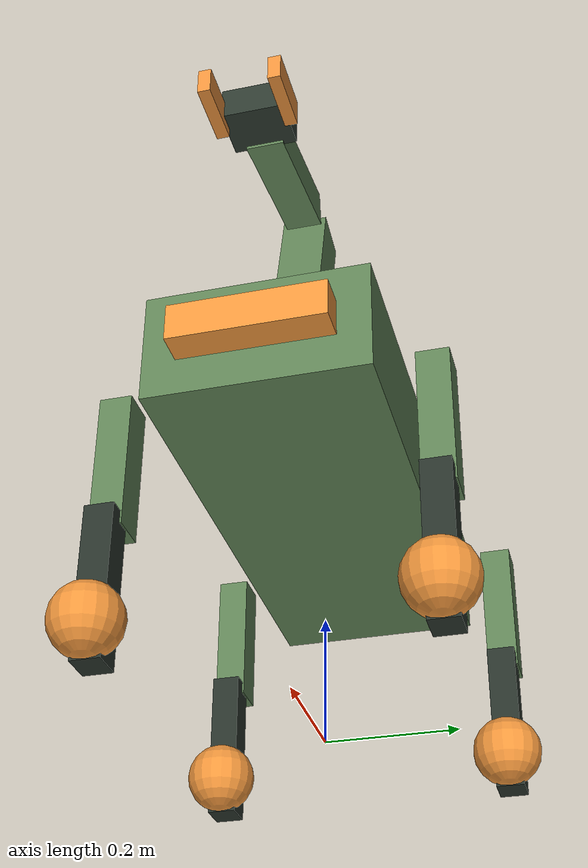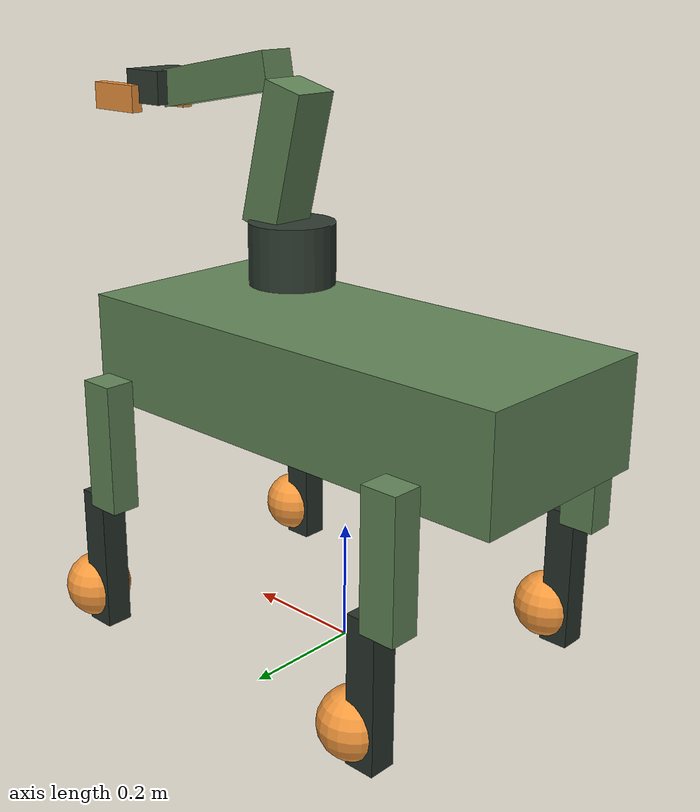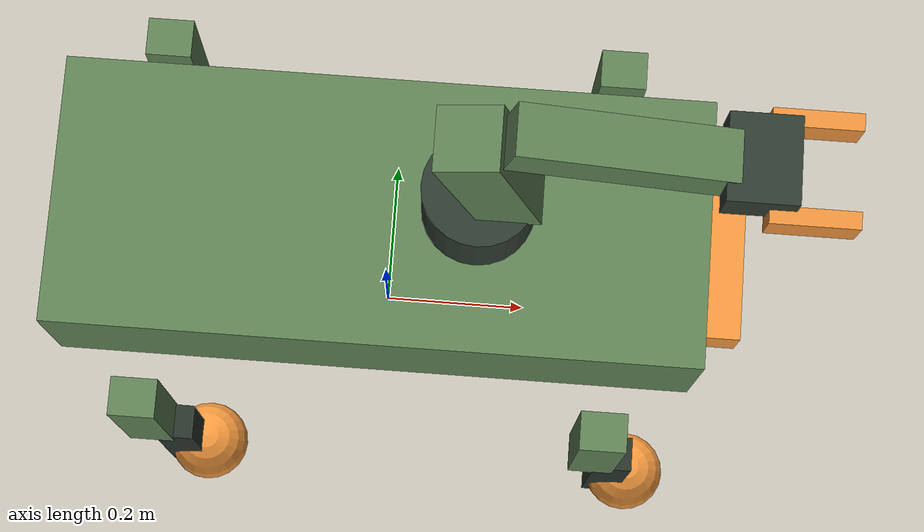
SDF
<?xml version='1.0' encoding='utf-8'?>
<sdf version="1.10">
  <model name="robot">
    <static>false</static>
    <link name="base_link">
      <inertial>
        <mass>45.0</mass>
        <pose>0 0 0.46 0 0 0</pose>
        <inertia>
          <ixx>0.555</ixx>
          <iyy>2.6429999999999993</iyy>
          <izz>2.9549999999999996</izz>
        </inertia>
      </inertial>
      <collision name="body_collision">
        <pose>0 0 0.46 0 0 0</pose>
        <geometry>
          <box>
            <size>0.78 0.3 0.16</size>
          </box>
        </geometry>
        <surface>
          <friction>
            <ode>
              <mu>0.6</mu>
              <mu2>0.6</mu2>
            </ode>
          </friction>
        </surface>
      </collision>
      <visual name="body">
        <pose>0 0 0.46 0 0 0</pose>
        <geometry>
          <box>
            <size>0.82 0.34 0.18</size>
          </box>
        </geometry>
        <material>
          <diffuse>0.38 0.52 0.34 1</diffuse>
        </material>
      </visual>
      <visual name="front_marker">
        <pose>0.43 0 0.46 0 0 0</pose>
        <geometry>
          <box>
            <size>0.06 0.238 0.06</size>
          </box>
        </geometry>
        <material>
          <diffuse>0.96 0.6 0.24 1</diffuse>
        </material>
      </visual>
      <visual name="arm_base_0">
        <pose>0.12 0 0.64 0 0 0</pose>
        <geometry>
          <cylinder>
            <radius>0.07</radius>
            <length>0.1</length>
          </cylinder>
        </geometry>
        <material>
          <diffuse>0.18 0.23 0.19 1</diffuse>
        </material>
      </visual>
      <visual name="upper_arm_0">
        <pose>0.13 0 0.79 0 -0.25 0</pose>
        <geometry>
          <box>
            <size>0.075 0.075 0.23</size>
          </box>
        </geometry>
        <material>
          <diffuse>0.38 0.52 0.34 1</diffuse>
        </material>
      </visual>
      <visual name="forearm_0">
        <pose>0.27 0 0.9 0 0.18 0</pose>
        <geometry>
          <box>
            <size>0.25 0.06 0.06</size>
          </box>
        </geometry>
        <material>
          <diffuse>0.38 0.52 0.34 1</diffuse>
        </material>
      </visual>
      <visual name="wrist_0">
        <pose>0.42 0 0.88 0 0 0</pose>
        <geometry>
          <box>
            <size>0.08 0.1 0.055</size>
          </box>
        </geometry>
        <material>
          <diffuse>0.18 0.23 0.19 1</diffuse>
        </material>
      </visual>
      <visual name="jaw_0_-0.055">
        <pose>0.48 -0.055 0.86 0 0 0</pose>
        <geometry>
          <box>
            <size>0.1 0.02 0.045</size>
          </box>
        </geometry>
        <material>
          <diffuse>0.94 0.58 0.24 1</diffuse>
        </material>
      </visual>
      <visual name="jaw_0_0.055">
        <pose>0.48 0.055 0.86 0 0 0</pose>
        <geometry>
          <box>
            <size>0.1 0.02 0.045</size>
          </box>
        </geometry>
        <material>
          <diffuse>0.94 0.58 0.24 1</diffuse>
        </material>
      </visual>
      <sensor name="imu" type="imu">
        <always_on>true</always_on>
        <update_rate>50</update_rate>
        <topic>/garden/imu</topic>
        <imu />
      </sensor>
    </link>
    <link name="front_left_thigh">
      <pose>0.3 0.24 0.32999999999999996 0 0 0</pose>
      <inertial>
        <mass>1.2</mass>
        <pose>0 0 0 0 0 0</pose>
        <inertia>
          <ixx>0.00509</ixx>
          <iyy>0.0052</iyy>
          <izz>0.00061</izz>
        </inertia>
      </inertial>
      <collision name="thigh_collision">
        <pose>0 0 0 0 0 0</pose>
        <geometry>
          <box>
            <size>0.06 0.05 0.22</size>
          </box>
        </geometry>
        <surface>
          <friction>
            <ode>
              <mu>0.4</mu>
              <mu2>0.4</mu2>
            </ode>
          </friction>
        </surface>
      </collision>
      <visual name="thigh">
        <pose>0 0 0 0 0 0</pose>
        <geometry>
          <box>
            <size>0.06 0.05 0.22</size>
          </box>
        </geometry>
        <material>
          <diffuse>0.38 0.52 0.34 1</diffuse>
        </material>
      </visual>
    </link>
    <link name="front_left_shin">
      <pose>0.32999999999999996 0.24 0.12 0 0 0</pose>
      <inertial>
        <mass>1.1</mass>
        <pose>0 0 0 0 0 0</pose>
        <inertia>
          <ixx>0.005465625000000001</ixx>
          <iyy>0.0055091666666666666</iyy>
          <izz>0.00041479166666666677</izz>
        </inertia>
      </inertial>
      <collision name="shin_collision">
        <pose>0 0 0 0 0 0</pose>
        <geometry>
          <box>
            <size>0.05 0.045 0.24</size>
          </box>
        </geometry>
        <surface>
          <friction>
            <ode>
              <mu>0.4</mu>
              <mu2>0.4</mu2>
            </ode>
          </friction>
        </surface>
      </collision>
      <visual name="shin">
        <pose>0 0 0 0 0 0</pose>
        <geometry>
          <box>
            <size>0.05 0.045 0.24</size>
          </box>
        </geometry>
        <material>
          <diffuse>0.16 0.2 0.17 1</diffuse>
        </material>
      </visual>
    </link>
    <link name="front_left_foot">
      <pose>0.36 0.24 0.055 0 0 0</pose>
      <inertial>
        <mass>0.45</mass>
        <inertia>
          <ixx>0.0005445000000000001</ixx>
          <iyy>0.0005445000000000001</iyy>
          <izz>0.0005445000000000001</izz>
        </inertia>
      </inertial>
      <collision name="foot_collision">
        <pose>0 0 0 0 0 0</pose>
        <geometry>
          <sphere>
            <radius>0.055</radius>
          </sphere>
        </geometry>
        <surface>
          <friction>
            <ode>
              <mu>0.95</mu>
              <mu2>0.95</mu2>
            </ode>
          </friction>
        </surface>
      </collision>
      <visual name="foot">
        <pose>0 0 0 0 0 0</pose>
        <geometry>
          <sphere>
            <radius>0.055</radius>
          </sphere>
        </geometry>
        <material>
          <diffuse>0.96 0.6 0.24 1</diffuse>
        </material>
      </visual>
    </link>
    <joint name="front_left_hip_joint" type="revolute">
      <parent>base_link</parent>
      <child>front_left_thigh</child>
      <pose>0.3 0.24 0.43 0 0 0</pose>
      <axis>
        <xyz>0 1 0</xyz>
        <limit>
          <lower>-0.85</lower>
          <upper>0.85</upper>
          <effort>55.0</effort>
          <velocity>8.0</velocity>
        </limit>
      </axis>
    </joint>
    <joint name="front_left_knee_joint" type="revolute">
      <parent>front_left_thigh</parent>
      <child>front_left_shin</child>
      <pose>0.32 0.24 0.22999999999999998 0 0 0</pose>
      <axis>
        <xyz>0 1 0</xyz>
        <limit>
          <lower>0.15</lower>
          <upper>1.45</upper>
          <effort>55.0</effort>
          <velocity>8.0</velocity>
        </limit>
      </axis>
    </joint>
    <joint name="front_left_ankle_fixed" type="fixed">
      <parent>front_left_shin</parent>
      <child>front_left_foot</child>
    </joint>
    <link name="front_right_thigh">
      <pose>0.3 -0.24 0.32999999999999996 0 0 0</pose>
      <inertial>
        <mass>1.2</mass>
        <pose>0 0 0 0 0 0</pose>
        <inertia>
          <ixx>0.00509</ixx>
          <iyy>0.0052</iyy>
          <izz>0.00061</izz>
        </inertia>
      </inertial>
      <collision name="thigh_collision">
        <pose>0 0 0 0 0 0</pose>
        <geometry>
          <box>
            <size>0.06 0.05 0.22</size>
          </box>
        </geometry>
        <surface>
          <friction>
            <ode>
              <mu>0.4</mu>
              <mu2>0.4</mu2>
            </ode>
          </friction>
        </surface>
      </collision>
      <visual name="thigh">
        <pose>0 0 0 0 0 0</pose>
        <geometry>
          <box>
            <size>0.06 0.05 0.22</size>
          </box>
        </geometry>
        <material>
          <diffuse>0.38 0.52 0.34 1</diffuse>
        </material>
      </visual>
    </link>
    <link name="front_right_shin">
      <pose>0.32999999999999996 -0.24 0.12 0 0 0</pose>
      <inertial>
        <mass>1.1</mass>
        <pose>0 0 0 0 0 0</pose>
        <inertia>
          <ixx>0.005465625000000001</ixx>
          <iyy>0.0055091666666666666</iyy>
          <izz>0.00041479166666666677</izz>
        </inertia>
      </inertial>
      <collision name="shin_collision">
        <pose>0 0 0 0 0 0</pose>
        <geometry>
          <box>
            <size>0.05 0.045 0.24</size>
          </box>
        </geometry>
        <surface>
          <friction>
            <ode>
              <mu>0.4</mu>
              <mu2>0.4</mu2>
            </ode>
          </friction>
        </surface>
      </collision>
      <visual name="shin">
        <pose>0 0 0 0 0 0</pose>
        <geometry>
          <box>
            <size>0.05 0.045 0.24</size>
          </box>
        </geometry>
        <material>
          <diffuse>0.16 0.2 0.17 1</diffuse>
        </material>
      </visual>
    </link>
    <link name="front_right_foot">
      <pose>0.36 -0.24 0.055 0 0 0</pose>
      <inertial>
        <mass>0.45</mass>
        <inertia>
          <ixx>0.0005445000000000001</ixx>
          <iyy>0.0005445000000000001</iyy>
          <izz>0.0005445000000000001</izz>
        </inertia>
      </inertial>
      <collision name="foot_collision">
        <pose>0 0 0 0 0 0</pose>
        <geometry>
          <sphere>
            <radius>0.055</radius>
          </sphere>
        </geometry>
        <surface>
          <friction>
            <ode>
              <mu>0.95</mu>
              <mu2>0.95</mu2>
            </ode>
          </friction>
        </surface>
      </collision>
      <visual name="foot">
        <pose>0 0 0 0 0 0</pose>
        <geometry>
          <sphere>
            <radius>0.055</radius>
          </sphere>
        </geometry>
        <material>
          <diffuse>0.96 0.6 0.24 1</diffuse>
        </material>
      </visual>
    </link>
    <joint name="front_right_hip_joint" type="revolute">
      <parent>base_link</parent>
      <child>front_right_thigh</child>
      <pose>0.3 -0.24 0.43 0 0 0</pose>
      <axis>
        <xyz>0 1 0</xyz>
        <limit>
          <lower>-0.85</lower>
          <upper>0.85</upper>
          <effort>55.0</effort>
          <velocity>8.0</velocity>
        </limit>
      </axis>
    </joint>
    <joint name="front_right_knee_joint" type="revolute">
      <parent>front_right_thigh</parent>
      <child>front_right_shin</child>
      <pose>0.32 -0.24 0.22999999999999998 0 0 0</pose>
      <axis>
        <xyz>0 1 0</xyz>
        <limit>
          <lower>0.15</lower>
          <upper>1.45</upper>
          <effort>55.0</effort>
          <velocity>8.0</velocity>
        </limit>
      </axis>
    </joint>
    <joint name="front_right_ankle_fixed" type="fixed">
      <parent>front_right_shin</parent>
      <child>front_right_foot</child>
    </joint>
    <link name="rear_left_thigh">
      <pose>-0.3 0.24 0.32999999999999996 0 0 0</pose>
      <inertial>
        <mass>1.2</mass>
        <pose>0 0 0 0 0 0</pose>
        <inertia>
          <ixx>0.00509</ixx>
          <iyy>0.0052</iyy>
          <izz>0.00061</izz>
        </inertia>
      </inertial>
      <collision name="thigh_collision">
        <pose>0 0 0 0 0 0</pose>
        <geometry>
          <box>
            <size>0.06 0.05 0.22</size>
          </box>
        </geometry>
        <surface>
          <friction>
            <ode>
              <mu>0.4</mu>
              <mu2>0.4</mu2>
            </ode>
          </friction>
        </surface>
      </collision>
      <visual name="thigh">
        <pose>0 0 0 0 0 0</pose>
        <geometry>
          <box>
            <size>0.06 0.05 0.22</size>
          </box>
        </geometry>
        <material>
          <diffuse>0.38 0.52 0.34 1</diffuse>
        </material>
      </visual>
    </link>
    <link name="rear_left_shin">
      <pose>-0.27 0.24 0.12 0 0 0</pose>
      <inertial>
        <mass>1.1</mass>
        <pose>0 0 0 0 0 0</pose>
        <inertia>
          <ixx>0.005465625000000001</ixx>
          <iyy>0.0055091666666666666</iyy>
          <izz>0.00041479166666666677</izz>
        </inertia>
      </inertial>
      <collision name="shin_collision">
        <pose>0 0 0 0 0 0</pose>
        <geometry>
          <box>
            <size>0.05 0.045 0.24</size>
          </box>
        </geometry>
        <surface>
          <friction>
            <ode>
              <mu>0.4</mu>
              <mu2>0.4</mu2>
            </ode>
          </friction>
        </surface>
      </collision>
      <visual name="shin">
        <pose>0 0 0 0 0 0</pose>
        <geometry>
          <box>
            <size>0.05 0.045 0.24</size>
          </box>
        </geometry>
        <material>
          <diffuse>0.16 0.2 0.17 1</diffuse>
        </material>
      </visual>
    </link>
    <link name="rear_left_foot">
      <pose>-0.24 0.24 0.055 0 0 0</pose>
      <inertial>
        <mass>0.45</mass>
        <inertia>
          <ixx>0.0005445000000000001</ixx>
          <iyy>0.0005445000000000001</iyy>
          <izz>0.0005445000000000001</izz>
        </inertia>
      </inertial>
      <collision name="foot_collision">
        <pose>0 0 0 0 0 0</pose>
        <geometry>
          <sphere>
            <radius>0.055</radius>
          </sphere>
        </geometry>
        <surface>
          <friction>
            <ode>
              <mu>0.95</mu>
              <mu2>0.95</mu2>
            </ode>
          </friction>
        </surface>
      </collision>
      <visual name="foot">
        <pose>0 0 0 0 0 0</pose>
        <geometry>
          <sphere>
            <radius>0.055</radius>
          </sphere>
        </geometry>
        <material>
          <diffuse>0.96 0.6 0.24 1</diffuse>
        </material>
      </visual>
    </link>
    <joint name="rear_left_hip_joint" type="revolute">
      <parent>base_link</parent>
      <child>rear_left_thigh</child>
      <pose>-0.3 0.24 0.43 0 0 0</pose>
      <axis>
        <xyz>0 1 0</xyz>
        <limit>
          <lower>-0.85</lower>
          <upper>0.85</upper>
          <effort>55.0</effort>
          <velocity>8.0</velocity>
        </limit>
      </axis>
    </joint>
    <joint name="rear_left_knee_joint" type="revolute">
      <parent>rear_left_thigh</parent>
      <child>rear_left_shin</child>
      <pose>-0.27999999999999997 0.24 0.22999999999999998 0 0 0</pose>
      <axis>
        <xyz>0 1 0</xyz>
        <limit>
          <lower>0.15</lower>
          <upper>1.45</upper>
          <effort>55.0</effort>
          <velocity>8.0</velocity>
        </limit>
      </axis>
    </joint>
    <joint name="rear_left_ankle_fixed" type="fixed">
      <parent>rear_left_shin</parent>
      <child>rear_left_foot</child>
    </joint>
    <link name="rear_right_thigh">
      <pose>-0.3 -0.24 0.32999999999999996 0 0 0</pose>
      <inertial>
        <mass>1.2</mass>
        <pose>0 0 0 0 0 0</pose>
        <inertia>
          <ixx>0.00509</ixx>
          <iyy>0.0052</iyy>
          <izz>0.00061</izz>
        </inertia>
      </inertial>
      <collision name="thigh_collision">
        <pose>0 0 0 0 0 0</pose>
        <geometry>
          <box>
            <size>0.06 0.05 0.22</size>
          </box>
        </geometry>
        <surface>
          <friction>
            <ode>
              <mu>0.4</mu>
              <mu2>0.4</mu2>
            </ode>
          </friction>
        </surface>
      </collision>
      <visual name="thigh">
        <pose>0 0 0 0 0 0</pose>
        <geometry>
          <box>
            <size>0.06 0.05 0.22</size>
          </box>
        </geometry>
        <material>
          <diffuse>0.38 0.52 0.34 1</diffuse>
        </material>
      </visual>
    </link>
    <link name="rear_right_shin">
      <pose>-0.27 -0.24 0.12 0 0 0</pose>
      <inertial>
        <mass>1.1</mass>
        <pose>0 0 0 0 0 0</pose>
        <inertia>
          <ixx>0.005465625000000001</ixx>
          <iyy>0.0055091666666666666</iyy>
          <izz>0.00041479166666666677</izz>
        </inertia>
      </inertial>
      <collision name="shin_collision">
        <pose>0 0 0 0 0 0</pose>
        <geometry>
          <box>
            <size>0.05 0.045 0.24</size>
          </box>
        </geometry>
        <surface>
          <friction>
            <ode>
              <mu>0.4</mu>
              <mu2>0.4</mu2>
            </ode>
          </friction>
        </surface>
      </collision>
      <visual name="shin">
        <pose>0 0 0 0 0 0</pose>
        <geometry>
          <box>
            <size>0.05 0.045 0.24</size>
          </box>
        </geometry>
        <material>
          <diffuse>0.16 0.2 0.17 1</diffuse>
        </material>
      </visual>
    </link>
    <link name="rear_right_foot">
      <pose>-0.24 -0.24 0.055 0 0 0</pose>
      <inertial>
        <mass>0.45</mass>
        <inertia>
          <ixx>0.0005445000000000001</ixx>
          <iyy>0.0005445000000000001</iyy>
          <izz>0.0005445000000000001</izz>
        </inertia>
      </inertial>
      <collision name="foot_collision">
        <pose>0 0 0 0 0 0</pose>
        <geometry>
          <sphere>
            <radius>0.055</radius>
          </sphere>
        </geometry>
        <surface>
          <friction>
            <ode>
              <mu>0.95</mu>
              <mu2>0.95</mu2>
            </ode>
          </friction>
        </surface>
      </collision>
      <visual name="foot">
        <pose>0 0 0 0 0 0</pose>
        <geometry>
          <sphere>
            <radius>0.055</radius>
          </sphere>
        </geometry>
        <material>
          <diffuse>0.96 0.6 0.24 1</diffuse>
        </material>
      </visual>
    </link>
    <joint name="rear_right_hip_joint" type="revolute">
      <parent>base_link</parent>
      <child>rear_right_thigh</child>
      <pose>-0.3 -0.24 0.43 0 0 0</pose>
      <axis>
        <xyz>0 1 0</xyz>
        <limit>
          <lower>-0.85</lower>
          <upper>0.85</upper>
          <effort>55.0</effort>
          <velocity>8.0</velocity>
        </limit>
      </axis>
    </joint>
    <joint name="rear_right_knee_joint" type="revolute">
      <parent>rear_right_thigh</parent>
      <child>rear_right_shin</child>
      <pose>-0.27999999999999997 -0.24 0.22999999999999998 0 0 0</pose>
      <axis>
        <xyz>0 1 0</xyz>
        <limit>
          <lower>0.15</lower>
          <upper>1.45</upper>
          <effort>55.0</effort>
          <velocity>8.0</velocity>
        </limit>
      </axis>
    </joint>
    <joint name="rear_right_ankle_fixed" type="fixed">
      <parent>rear_right_shin</parent>
      <child>rear_right_foot</child>
    </joint>
    <plugin filename="/opt/containers/codex-work/robo/build/simulation/libgarden-quadruped-trot.so" name="garden::QuadrupedTrot">
      <kp>85</kp>
      <kd>4.5</kd>
      <effort>55</effort>
      <frequency>1.45</frequency>
      <stride>0.38</stride>
      <lift>0.45</lift>
    </plugin>
    <plugin filename="gz-sim-joint-state-publisher-system" name="gz::sim::systems::JointStatePublisher">
      <topic>/garden/joint_states</topic>
      <joint_name>front_left_hip_joint</joint_name>
      <joint_name>front_left_knee_joint</joint_name>
      <joint_name>front_right_hip_joint</joint_name>
      <joint_name>front_right_knee_joint</joint_name>
      <joint_name>rear_left_hip_joint</joint_name>
      <joint_name>rear_left_knee_joint</joint_name>
      <joint_name>rear_right_hip_joint</joint_name>
      <joint_name>rear_right_knee_joint</joint_name>
      <update_rate>100</update_rate>
    </plugin>
    <plugin filename="gz-sim-pose-publisher-system" name="gz::sim::systems::PosePublisher">
      <publish_model_pose>true</publish_model_pose>
      <publish_link_pose>true</publish_link_pose>
      <publish_visual_pose>false</publish_visual_pose>
      <publish_collision_pose>false</publish_collision_pose>
      <publish_sensor_pose>false</publish_sensor_pose>
      <use_pose_vector_msg>true</use_pose_vector_msg>
      <update_frequency>20</update_frequency>
    </plugin>
  </model>
</sdf>
